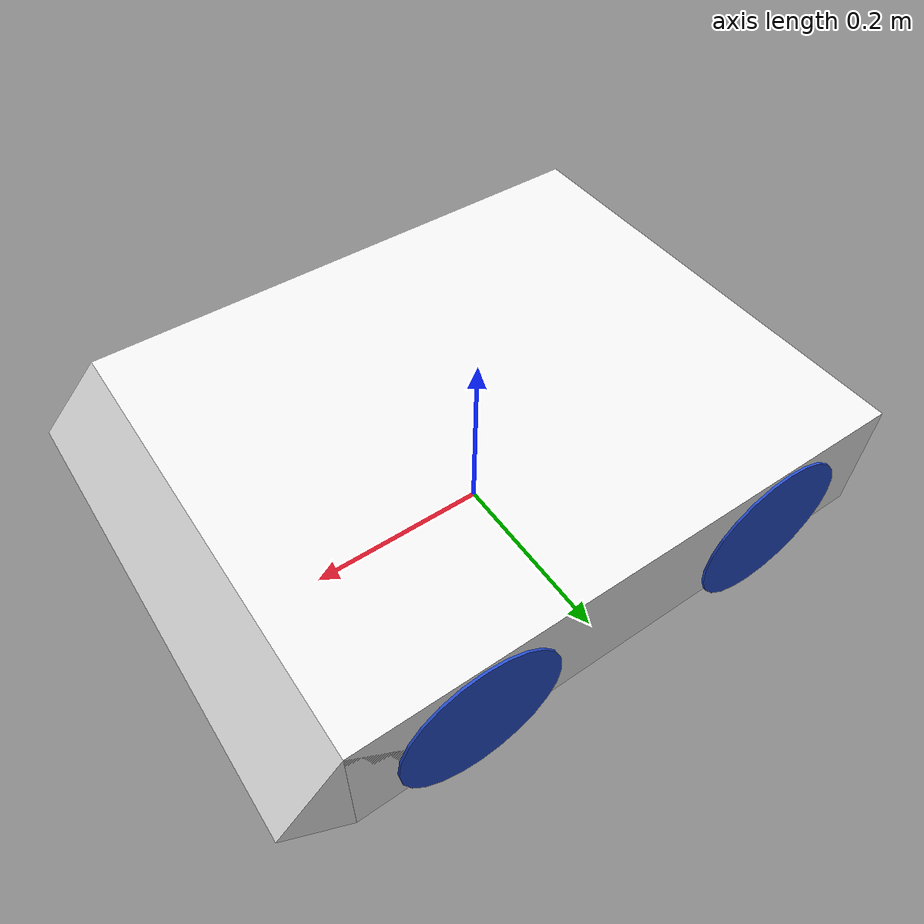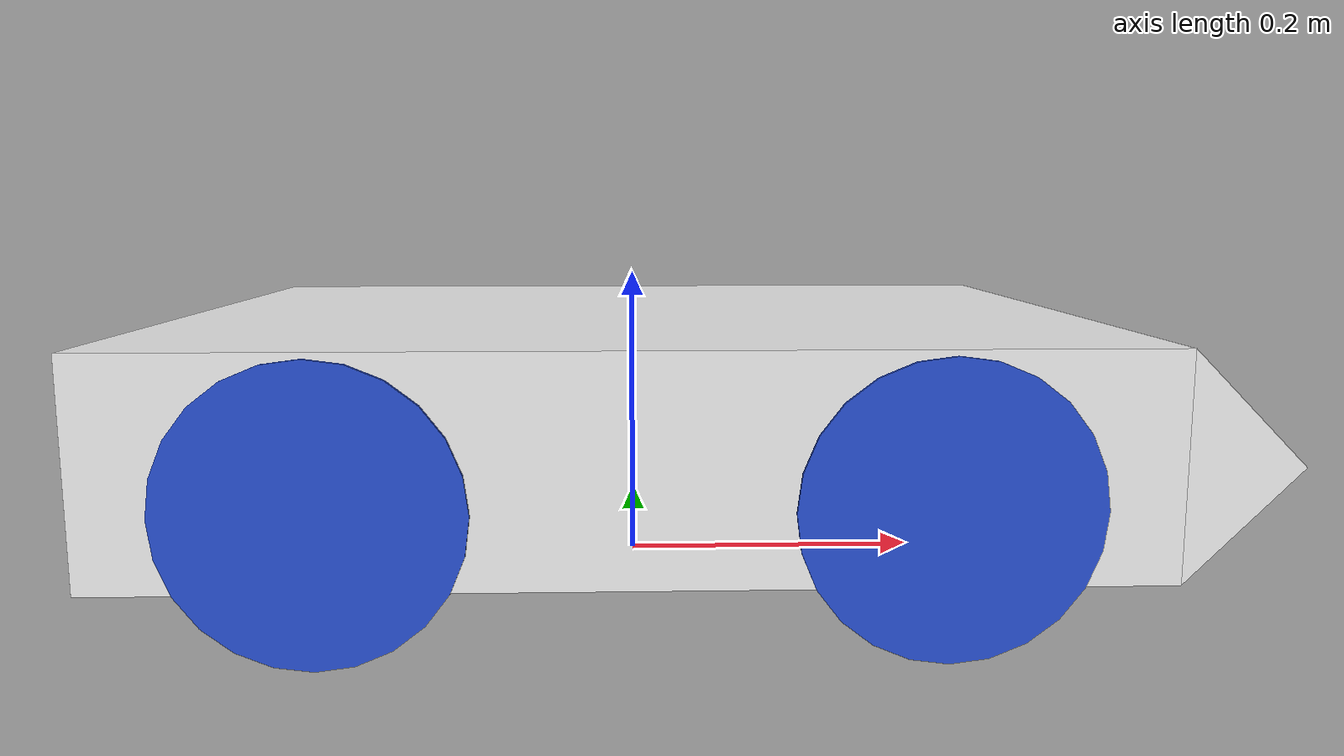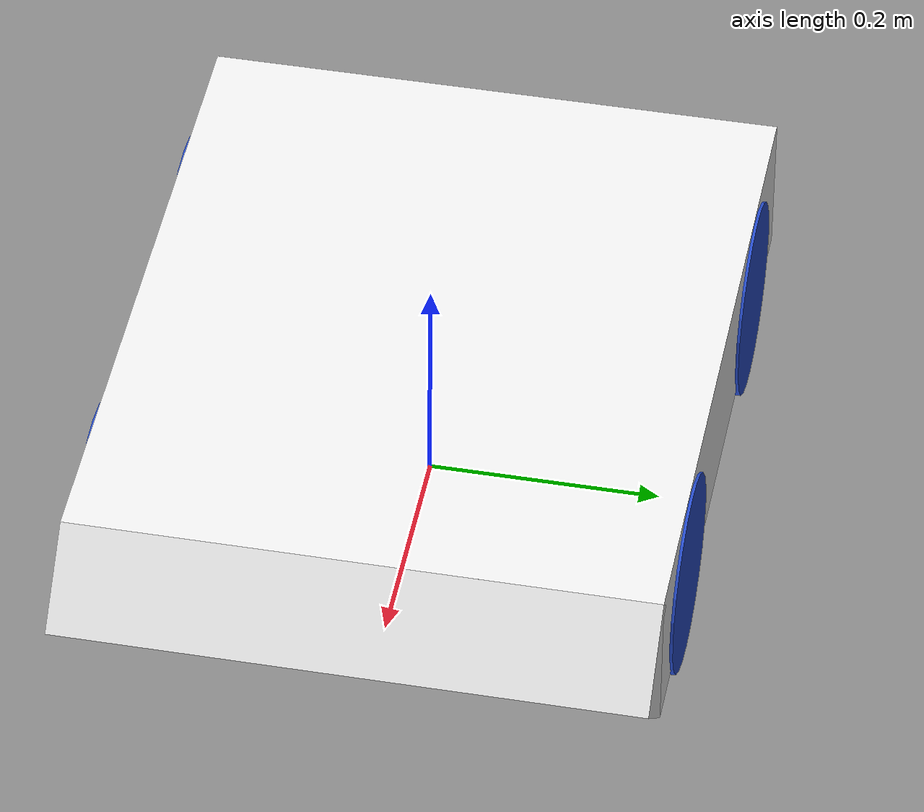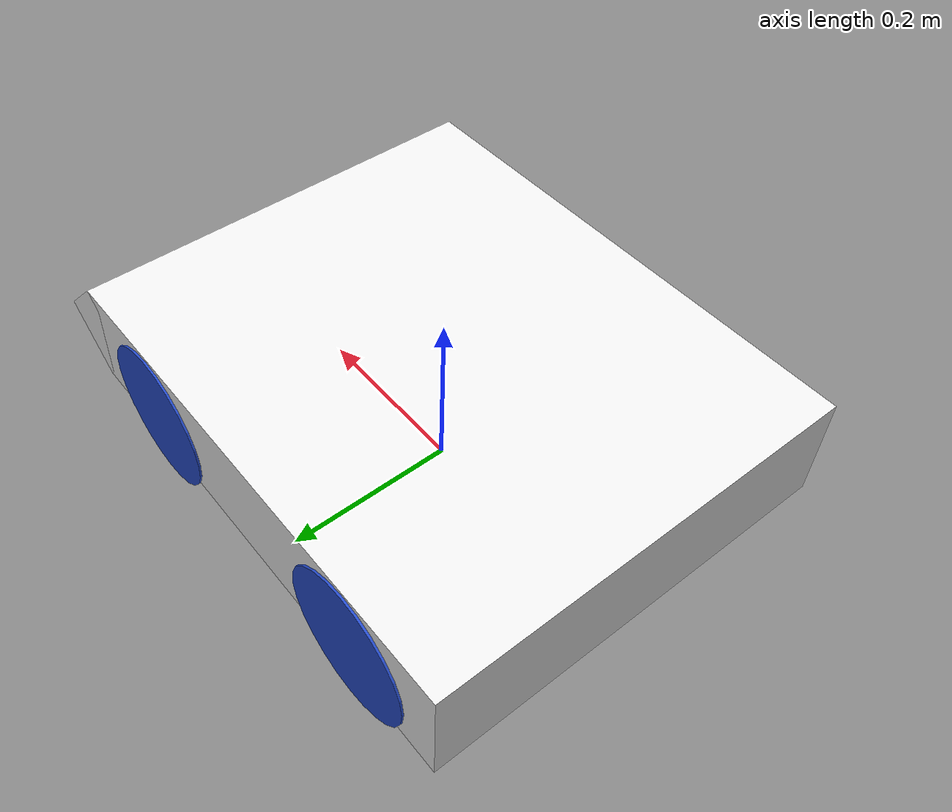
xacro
<?xml version="1.0"?>

<robot name="base"
    xmlns:xacro="http://ros.org/wiki/xacro">

    <xacro:include filename="$(find my_robot)/urdf/diff_bot/common_properties.urdf.xacro" />

    <!-- Define a number of dimensions using properties -->
    <xacro:property name="base_size_x" value="0.6" />
    <xacro:property name="base_size_y" value="0.5" />
    <xacro:property name="base_size_z" value="0.130955" />
    <xacro:property name="wheel_length" value="0.03516" />
    <!-- 0.06032 value for perfect fit.-->
    <xacro:property name="wheel_radius" value="0.085" />
    <xacro:property name="wheel_offset_x" value="0.3" />
    <xacro:property name="wheel_offset_y" value="0.23492" />
    <xacro:property name="wheel_offset_z" value="-0.0229775" />
    <xacro:property name="PI" value="3.1415" />
    <!-- differential_drive_controller update rate -->
    <xacro:property name="update_rate" value="30" />
    <!--
        For more colors check the link below
        http://wiki.ros.org/simulator_gazebo/Tutorials/ListOfMaterials
    -->
    <xacro:property name="wheel_color" value="WoodPallet" />
    <xacro:property name="castor_wheel_color" value="Grass" />
    <xacro:property name="body_color" value="WoodFloor" />

    <xacro:macro name="wheel" params="suffix parent reflect_y reflect_x color_rviz color_gazebo">
        <joint name="${parent}_${suffix}_wheel_joint" type="continuous">
            <axis xyz="0 0 ${-reflect_y}" />
            <limit effort="100" velocity="100"/>
            <safety_controller k_velocity="10" />
            <origin xyz="${reflect_x*wheel_offset_x - 1.5*reflect_x*wheel_radius} ${reflect_y*wheel_offset_y} ${wheel_offset_z}" rpy="${reflect_y*PI/2} 0 0" />
            <parent link="${parent}_link"/>
            <child link="${parent}_${suffix}_wheel_link"/>
        </joint>
        <gazebo reference="${parent}_${suffix}_wheel_link">
            <material>Gazebo/${color_gazebo}</material>
        </gazebo>
        <link name="${parent}_${suffix}_wheel_link">
            <visual>
                <origin xyz="0 0 0" rpy="0 0 0" />
                <geometry>
                    <cylinder radius="${wheel_radius}" length="${wheel_length}"/>
                </geometry>
                <material name="${color_rviz}" />
            </visual>
            <collision>
                <origin xyz="0 0 0" rpy="0 0 0" />
                <geometry>
                    <cylinder radius="${wheel_radius}" length="${wheel_length}"/>
                </geometry>
                <surface>
                    <friction>
                        <ode>
                            <mu>0.5</mu>
                            <mu2>0.5</mu2>
                            <fdir1>1.000000 1.000000 1.000000</fdir1>
                            <slip1>0.000000</slip1>
                            <slip2>0.000000</slip2>
                        </ode>
                    </friction>
                </surface>
            </collision>
            <xacro:cylinder_inertial radius="${wheel_radius}" length="${wheel_length}" mass="5">
                <origin xyz="0 0 0" />
            </xacro:cylinder_inertial>
        </link>
    </xacro:macro>

    <!-- The base xacro macro -->
    <xacro:macro name="base" params="name color_rviz color_gazebo">
        <gazebo reference="${name}_link">
            <material>Gazebo/${color_gazebo}</material>
        </gazebo>
        <link name="${name}_link">
            <visual>
                <origin xyz="0 0 0" rpy="0 0 0" />
                <geometry>
                    <box size="${base_size_x} ${base_size_y} ${base_size_z}" />
                </geometry>
                <material name="${color_rviz}" />
            </visual>
            <collision>
                <origin xyz="0 0 0" rpy="0 0 0" />
                <geometry>
                    <box size="${base_size_x} ${base_size_y} ${base_size_z}" />
                </geometry>
            </collision>
            <visual>
                <origin xyz="${base_size_x/2} 0 0" rpy="0 ${PI/4} 0" />
                <geometry>
                    <box size="${base_size_z/sqrt(2)} ${base_size_y} ${base_size_z/sqrt(2)}" />
                </geometry>
                <material name="${color_rviz}" />
            </visual>
            <collision>
                <origin xyz="${base_size_x/2} 0 0" rpy="0 ${PI/4} 0" />
                <geometry>
                    <box size="${base_size_z/sqrt(2)} ${base_size_y} ${base_size_z/sqrt(2)}" />
                </geometry>
            </collision>
            <xacro:box_inertial x="${base_size_x}" y="${base_size_y}" z="${base_size_z}" mass="12">
                <origin xyz="0 0 0" />
            </xacro:box_inertial>
        </link>
    </xacro:macro>

    <link name="base_footprint">
        <visual>
            <origin xyz="0 0 0" rpy="0 0 0" />
            <geometry>
                <box size="0.05 0.05 0.001" />
            </geometry>
            <material name="TransparentGreen" />
        </visual>
    </link>

    <joint name="base_joint" type="fixed">
        <origin xyz="0 0 ${wheel_radius - wheel_offset_z}" rpy="0 0 0" />
        <parent link="base_footprint"/>
        <child link="base_link" />
    </joint>

    <!-- Add base_link -->
    <xacro:base name="base" color_rviz="OffWhite" color_gazebo="${body_color}" />
    <!-- Add the drive wheels -->
    <xacro:wheel parent="base" suffix="fl" reflect_x="1" reflect_y="1" color_rviz="Blue" color_gazebo="${wheel_color}" />
    <xacro:wheel parent="base" suffix="fr" reflect_x="1" reflect_y="-1" color_rviz="Blue" color_gazebo="${wheel_color}" />
    <xacro:wheel parent="base" suffix="bl" reflect_x="-1" reflect_y="1" color_rviz="Blue" color_gazebo="${wheel_color}" />
    <xacro:wheel parent="base" suffix="br" reflect_x="-1" reflect_y="-1" color_rviz="Blue" color_gazebo="${wheel_color}" />

    <!-- Plugins -->
    <gazebo>
        <plugin name="skid_steer_drive_controller" filename="libgazebo_ros_skid_steer_drive.so">
            <updateRate>90.0</updateRate>
            <robotNamespace>/my_robot</robotNamespace>
            <leftFrontJoint>base_fl_wheel_joint</leftFrontJoint>
            <rightFrontJoint>base_fr_wheel_joint</rightFrontJoint>
            <leftRearJoint>base_bl_wheel_joint</leftRearJoint>
            <rightRearJoint>base_br_wheel_joint</rightRearJoint>
            <wheelSeparation>${wheel_offset_y*2}</wheelSeparation>
            <wheelDiameter>${wheel_radius*2}</wheelDiameter>
            <robotBaseFrame>base_footprint</robotBaseFrame>
            <torque>150</torque>
            <MaxForce>3.0</MaxForce>
            <commandTopic>cmd_vel</commandTopic>
            <odometryTopic>odom</odometryTopic>
            <odometryFrame>odom</odometryFrame>
            <broadcastTF>true</broadcastTF>
            <covariance_x>0.001</covariance_x>
            <covariance_y>0.001</covariance_y>
            <covariance_yaw>0.01</covariance_yaw>
        </plugin>
    </gazebo>

</robot>
